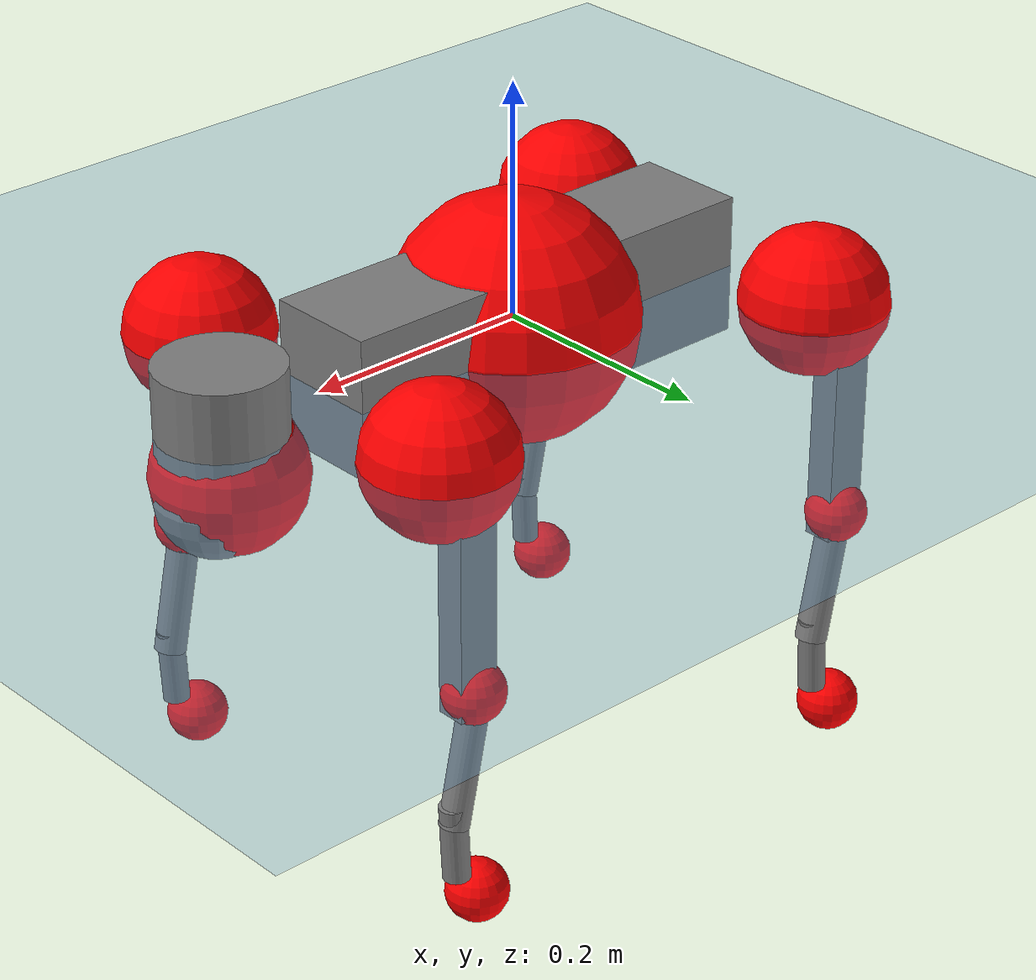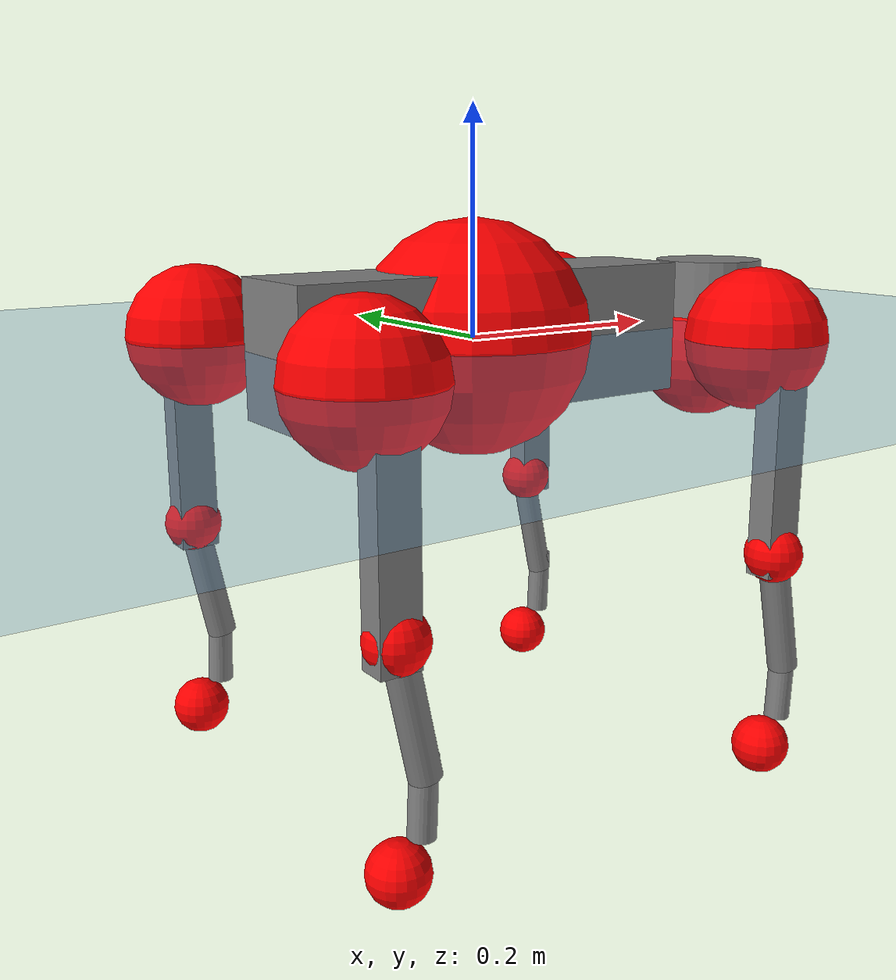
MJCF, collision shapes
<mujoco model="go2">
  <compiler angle="radian" assetdir="assets" balanceinertia="true" inertiafromgeom="false"/>

  <option timestep="0.005" density="1.2" viscosity="2e-05"/>

  <size nkey="1"/>

  <visual>
    <quality shadowsize="8192"/>
    <map shadowclip="0.5"/>
  </visual>

  <default>
    <default class="/">
      <geom contype="0" conaffinity="0" group="1" solref="-1000 -80"/>
      <site size="0.01 0.005 0.005" group="5"/>
      <general forcelimited="true" biastype="affine" gainprm="20" biasprm="0 -20 -0.5"/>
      <default class="go2">
        <joint armature="0.01" damping="0.01" frictionloss="0.2"/>
        <geom condim="1" margin="0.001"/>
        <default class="visual">
          <geom type="mesh" group="2"/>
        </default>
        <default class="collision">
          <geom group="3"/>
          <default class="foot">
            <geom size="0.022 0 0" condim="6" priority="1" friction="0.8 0.02 0.01" solimp="0.015 1 0.022"/>
          </default>
        </default>
        <default class="reward_collision_sphere">
          <geom group="5" rgba="1 0 0 1"/>
        </default>
      </default>
    </default>
  </default>

  <asset>
    <texture type="skybox" colorspace="auto" name="//unnamed_texture_0" builtin="gradient" rgb1="0.95 0.95 0.95" rgb2="0.95 0.95 0.95" width="100" height="600"/>
    <texture type="2d" colorspace="auto" name="texplane" builtin="checker" rgb1="0.345 0.575 0.748" rgb2="0.345 0.575 0.748" markrgb="1 1 1" width="512" height="512"/>
    <material name="MatPlane" class="/" texture="texplane" texuniform="true" texrepeat="2 2" specular="0.9"/>
    <material name="metal" class="/" rgba="0.9 0.95 0.95 1"/>
    <material name="black" class="/" rgba="0 0 0 1"/>
    <material name="white" class="/"/>
    <material name="gray" class="/" rgba="0.671705 0.692426 0.77427 1"/>
    <mesh name="base_0" class="/" file="base_0.obj"/>
    <mesh name="base_1" class="/" file="base_1.obj"/>
    <mesh name="base_2" class="/" file="base_2.obj"/>
    <mesh name="base_3" class="/" file="base_3.obj"/>
    <mesh name="base_4" class="/" file="base_4.obj"/>
    <mesh name="hip_0" class="/" file="hip_0.obj"/>
    <mesh name="hip_1" class="/" file="hip_1.obj"/>
    <mesh name="thigh_0" class="/" file="thigh_0.obj"/>
    <mesh name="thigh_1" class="/" file="thigh_1.obj"/>
    <mesh name="thigh_mirror_0" class="/" file="thigh_mirror_0.obj"/>
    <mesh name="thigh_mirror_1" class="/" file="thigh_mirror_1.obj"/>
    <mesh name="calf_0" class="/" file="calf_0.obj"/>
    <mesh name="calf_1" class="/" file="calf_1.obj"/>
    <mesh name="calf_mirror_0" class="/" file="calf_mirror_0.obj"/>
    <mesh name="calf_mirror_1" class="/" file="calf_mirror_1.obj"/>
    <mesh name="foot" class="/" file="foot.obj"/>
  </asset>

  <worldbody>
    <geom name="floor" class="/" size="100 100 0.125" type="plane" group="0" material="MatPlane"/>
    <light name="toplight_shadow" class="/" pos="0 0 5" dir="0.0990148 0.0990148 -0.990148" type="directional" ambient="0.04 0.04 0.04" diffuse="0.55 0.55 0.55" specular="0.12 0.12 0.12"/>
    <light name="toplight_fill" class="/" pos="0 0 5" dir="0.0990148 0.0990148 -0.990148" type="directional" castshadow="false" ambient="0.04 0.04 0.04" diffuse="0.3 0.3 0.3" specular="0.08 0.08 0.08"/>
    <body name="trunk" childclass="go2" pos="0.000468863 6.55231e-05 0.000632384" quat="1 -9.98364e-06 1.66926e-06 8.27748e-06">
      <inertial pos="0.0240162 0.000482389 -0.00488086" quat="-0.0186684 0.718625 -0.00379665 0.695137" mass="7.98438" diaginertia="0.118488 0.282958 0.0123927"/>
      <joint name="//unnamed_joint_0" type="free" armature="0" damping="0" frictionloss="0"/>
      <geom name="//unnamed_geom_1" class="visual" material="black" mesh="base_0"/>
      <geom name="//unnamed_geom_2" class="visual" material="black" mesh="base_1"/>
      <geom name="//unnamed_geom_3" class="visual" material="black" mesh="base_2"/>
      <geom name="//unnamed_geom_4" class="visual" material="white" mesh="base_3"/>
      <geom name="//unnamed_geom_5" class="visual" material="gray" mesh="base_4"/>
      <geom name="trunk_1" class="collision" size="0.196847 0.0489241 0.0596507" type="box"/>
      <geom name="trunk_2" class="collision" size="0.0523252 0.0470927" pos="0.292218 0 0.00872534" type="cylinder"/>
      <geom name="trunk_3" class="collision" size="0.0491857" pos="0.300421 0 -0.052352"/>
      <geom name="//unnamed_geom_9" class="reward_collision_sphere" size="0.10465"/>
      <geom name="//unnamed_geom_10" class="reward_collision_sphere" size="0.0627903" pos="0.287092 0 -0.039264"/>
      <site name="imu" pos="-0.025306 0.00854871 0.0371929" size="0.010465"/>
      <camera name="track" pos="0 -2.4833 0" quat="0.707107 0.707107 0 0" mode="trackcom"/>
      <camera name="ego_camera" pos="0.319902 0 0.039264" quat="-0.5 -0.5 0.5 0.5"/>
      <body name="FL_hip" pos="0.199105 0.054045 -0.00208672" quat="1 0.000146397 -4.32828e-05 -0.000275797">
        <inertial pos="-0.00702432 0.00256552 0.00156844" quat="0.494099 0.499034 0.50499 0.501813" mass="0.784383" diaginertia="0.00100322 0.00180206 0.00023955"/>
        <joint name="FL_hip_joint" pos="0 0 0" axis="1 0.000513368 0.000281865" range="-1.12572 1.08779" armature="0.0105011" damping="0.0113382" frictionloss="0.219121"/>
        <geom name="//unnamed_geom_11" class="visual" material="metal" mesh="hip_0"/>
        <geom name="//unnamed_geom_12" class="visual" material="gray" mesh="hip_1"/>
        <geom name="//unnamed_geom_13" class="collision" size="0.0481392 0.0209301" pos="0 0.0993322 0" quat="0.707107 0.707107 0 0" type="cylinder"/>
        <geom name="//unnamed_geom_14" class="reward_collision_sphere" size="0.0627903" pos="0 0.0869156 0"/>
        <body name="FL_thigh" pos="-0.00138282 0.115009 -0.00148243" quat="1 -0.000331664 -7.85752e-05 0.000183959">
          <inertial pos="-0.00319014 -0.0261997 -0.0266125" quat="0.830668 0.0866661 -0.024992 0.549414" mass="1.32213" diaginertia="0.00678781 0.0172786 0.000428474"/>
          <joint name="FL_thigh_joint" pos="0 0 0" axis="0.000372392 1 -0.000170943" stiffness="0.00124231" range="-1.52641 3.44604" armature="0.0101792" damping="0.018427" frictionloss="0.236474"/>
          <geom name="//unnamed_geom_15" class="visual" material="metal" mesh="thigh_0"/>
          <geom name="//unnamed_geom_16" class="visual" material="gray" mesh="thigh_1"/>
          <geom name="//unnamed_geom_17" class="collision" size="0.111453 0.0128197 0.0177906" pos="0 0 -0.0929249" quat="0.707107 0 0.707107 0" type="box"/>
          <body name="FL_calf" pos="-0.00376633 0.00211968 -0.18826" quat="1 0.000175691 0.000976807 5.5212e-05">
            <inertial pos="0.00752225 -0.000933452 -0.119971" quat="0.712006 0.00178297 -0.00521245 0.702152" mass="0.27035" diaginertia="0.00167475 0.00415478 2.76115e-05"/>
            <joint name="FL_calf_joint" pos="0 0 0" axis="0.00505532 0.999986 -0.0017865" range="-2.66236 -0.855456" armature="0.00984085" damping="0.0102073" frictionloss="0.205749"/>
            <geom name="//unnamed_geom_18" class="visual" material="gray" mesh="calf_0"/>
            <geom name="//unnamed_geom_19" class="visual" material="black" mesh="calf_1"/>
            <geom name="FL_calf0" class="collision" size="0.0125581 0.0627903" pos="0.00820262 0 -0.052352" quat="0.994493 0 -0.104807 0" type="cylinder"/>
            <geom name="//unnamed_geom_21" class="collision" size="0.0115115 0.0340114" pos="0.0205065 0 -0.129135" quat="0.999688 0 0.0249974 0" type="cylinder"/>
            <geom name="//unnamed_geom_22" class="visual" pos="0 0 -0.18585" quat="1 0 0 0" material="black" mesh="foot"/>
            <geom name="FL_foot" class="foot" size="0.0184666" pos="-0.00205065 0 -0.18585"/>
            <geom name="//unnamed_geom_24" class="reward_collision_sphere" size="0.0261626"/>
            <geom name="//unnamed_geom_25" class="reward_collision_sphere" size="0.0261626" pos="-0.00205065 0 -0.18585"/>
            <site name="FL_foot" class="foot" pos="-0.00205065 0 -0.18585" size="0.010465"/>
          </body>
        </body>
      </body>
      <body name="FR_hip" pos="0.201454 -0.0596904 -0.0012014" quat="1 -9.19129e-05 -1.77187e-05 0.000669326">
        <inertial pos="-0.00784602 -0.000420161 0.00221557" quat="0.498277 0.505507 0.499155 0.497018" mass="0.794531" diaginertia="0.000975007 0.00185694 0.000243287"/>
        <joint name="FR_hip_joint" pos="0 0 0" axis="0.999986 0.00234454 0.00468606" range="-1.05089 1.05166" armature="0.0117928" damping="0.0168294" frictionloss="0.236995"/>
        <geom name="//unnamed_geom_26" class="visual" pos="0 3.21561e-09 1.37924e-07" quat="4.63268e-05 1 0 0" material="metal" mesh="hip_0"/>
        <geom name="//unnamed_geom_27" class="visual" pos="0 5.21288e-09 -3.41139e-07" quat="4.63268e-05 1 0 0" material="gray" mesh="hip_1"/>
        <geom name="//unnamed_geom_28" class="collision" size="0.0481392 0.0209301" pos="0 -0.0993322 0" quat="0.707107 0.707107 0 0" type="cylinder"/>
        <geom name="//unnamed_geom_29" class="reward_collision_sphere" size="0.0627903" pos="0 -0.0869156 0"/>
        <body name="FR_thigh" pos="-0.00244563 -0.122193 -0.00355038" quat="0.999999 0.000523239 0.000345218 0.000945374">
          <inertial pos="-0.00615459 0.0310501 -0.0285012" quat="0.547195 -0.0179566 0.0896591 0.831996" mass="1.31839" diaginertia="0.00671905 0.017121 0.000426414"/>
          <joint name="FR_thigh_joint" pos="0 0 0" axis="0.00510508 -0.999987 -0.000241784" range="-3.44134 1.56698" armature="0.010924" damping="0.0248271" frictionloss="0.209116"/>
          <geom name="//unnamed_geom_30" class="visual" material="metal" mesh="thigh_mirror_0"/>
          <geom name="//unnamed_geom_31" class="visual" material="gray" mesh="thigh_mirror_1"/>
          <geom name="//unnamed_geom_32" class="collision" size="0.111453 0.0128197 0.0177906" pos="0 0 -0.0929249" quat="0.707107 0 0.707107 0" type="box"/>
          <body name="FR_calf" pos="0.00205307 -0.000102953 -0.186678" quat="1 -0.000228418 -0.000283638 -0.000446173">
            <inertial pos="0.00907831 0.00100282 -0.122685" quat="0.703459 -0.00127746 0.0076256 0.710694" mass="0.277721" diaginertia="0.00173272 0.0043066 2.76744e-05"/>
            <joint name="FR_calf_joint" pos="0 0 0" axis="-0.0021391 -0.99988 -0.01532" range="0.872314 2.70841" armature="0.00938424" damping="0" frictionloss="0.219846"/>
            <geom name="//unnamed_geom_33" class="visual" material="gray" mesh="calf_mirror_0"/>
            <geom name="//unnamed_geom_34" class="visual" material="black" mesh="calf_mirror_1"/>
            <geom name="FR_calf0" class="collision" size="0.0136046 0.0627903" pos="0.0102533 0 -0.052352" quat="0.995004 0 -0.0998334 0" type="cylinder"/>
            <geom name="//unnamed_geom_36" class="collision" size="0.0115115 0.0340114" pos="0.0205065 0 -0.129135" quat="0.999688 0 0.0249974 0" type="cylinder"/>
            <geom name="//unnamed_geom_37" class="visual" pos="0 0 -0.18585" quat="1 0 0 0" material="black" mesh="foot"/>
            <geom name="FR_foot" class="foot" size="0.0207043" pos="-0.00205065 0 -0.18585"/>
            <geom name="//unnamed_geom_39" class="reward_collision_sphere" size="0.0261626"/>
            <geom name="//unnamed_geom_40" class="reward_collision_sphere" size="0.0261626" pos="-0.00205065 0 -0.18585"/>
            <site name="FR_foot" class="foot" pos="-0.00205065 0 -0.18585" size="0.010465"/>
          </body>
        </body>
      </body>
      <body name="RL_hip" pos="-0.197626 0.0562311 0.00164047" quat="0.999999 -0.00056692 0.000758456 -0.000611095">
        <inertial pos="0.00528153 0.00306197 0.00160943" quat="0.516358 0.492898 0.492302 0.498061" mass="0.827199" diaginertia="0.00103234 0.00180923 0.000252297"/>
        <joint name="RL_hip_joint" pos="0 0 0" axis="-0.999905 0.0135094 -0.00284629" range="-0.999742 0.996488" armature="0.0106389" damping="0.0061128" frictionloss="0.231825"/>
        <geom name="//unnamed_geom_41" class="visual" pos="-1.33107e-09 0 -2.6092e-07" quat="4.63268e-05 0 1 0" material="metal" mesh="hip_0"/>
        <geom name="//unnamed_geom_42" class="visual" pos="-2.15782e-09 0 -2.31399e-07" quat="4.63268e-05 0 1 0" material="gray" mesh="hip_1"/>
        <geom name="//unnamed_geom_43" class="collision" size="0.0481392 0.0209301" pos="0 0.0993322 0" quat="0.707107 0.707107 0 0" type="cylinder"/>
        <geom name="//unnamed_geom_44" class="reward_collision_sphere" size="0.0627903" pos="0 0.0869156 0"/>
        <body name="RL_thigh" pos="-0.000940909 0.118379 0.00283298" quat="0.999999 -0.000408669 0.000286091 -0.00106418">
          <inertial pos="-0.0036977 -0.028248 -0.026191" quat="0.831332 0.0794596 -0.0255162 0.549475" mass="1.29971" diaginertia="0.00673963 0.0183471 0.000455128"/>
          <joint name="RL_thigh_joint" pos="0 0 0" axis="0.0103817 0.999795 0.0174116" range="-0.523139 4.5663" armature="0.0092447" damping="0.0100843" frictionloss="0.202578"/>
          <geom name="//unnamed_geom_45" class="visual" material="metal" mesh="thigh_0"/>
          <geom name="//unnamed_geom_46" class="visual" material="gray" mesh="thigh_1"/>
          <geom name="//unnamed_geom_47" class="collision" size="0.111453 0.0128197 0.0177906" pos="0 0 -0.0929249" quat="0.707107 0 0.707107 0" type="box"/>
          <body name="RL_calf" pos="5.34222e-05 0.00348916 -0.184367" quat="0.999999 -0.000119251 0.000760012 -0.000798655">
            <inertial pos="0.00581254 -0.00135703 -0.124841" quat="0.710125 0.00150923 -0.0046898 0.704058" mass="0.286597" diaginertia="0.0016932 0.00440552 2.75033e-05"/>
            <joint name="RL_calf_joint" pos="0 0 0" axis="0.00131601 0.999999 -0.00105367" range="-2.78681 -0.838873" armature="0.010004" damping="0" frictionloss="0.218827"/>
            <geom name="//unnamed_geom_48" class="visual" material="gray" mesh="calf_0"/>
            <geom name="//unnamed_geom_49" class="visual" material="black" mesh="calf_1"/>
            <geom name="RL_calf0" class="collision" size="0.0136046 0.0627903" pos="0.0102533 0 -0.052352" quat="0.995004 0 -0.0998334 0" type="cylinder"/>
            <geom name="//unnamed_geom_51" class="collision" size="0.0115115 0.0340114" pos="0.0205065 0 -0.129135" quat="0.999688 0 0.0249974 0" type="cylinder"/>
            <geom name="//unnamed_geom_52" class="visual" pos="0 0 -0.18585" quat="1 0 0 0" material="black" mesh="foot"/>
            <geom name="RL_foot" class="foot" size="0.0231198" pos="-0.00205065 0 -0.18585"/>
            <geom name="//unnamed_geom_54" class="reward_collision_sphere" size="0.0261626"/>
            <geom name="//unnamed_geom_55" class="reward_collision_sphere" size="0.0261626" pos="-0.00205065 0 -0.18585"/>
            <site name="RL_foot" class="foot" pos="-0.00205065 0 -0.18585" size="0.010465"/>
          </body>
        </body>
      </body>
      <body name="RR_hip" pos="-0.196465 -0.0583085 0.000275351" quat="1 -0.000302 -0.000405125 0.000269383">
        <inertial pos="0.00778727 -0.00326319 -0.00126074" quat="0.497912 0.487864 0.506065 0.507908" mass="0.789847" diaginertia="0.00102467 0.00185388 0.000241417"/>
        <joint name="RR_hip_joint" pos="0 0 0" axis="-0.999956 0.00324432 0.00880089" stiffness="0.0101592" range="-1.07263 1.08612" armature="0.0104227" damping="0.00573082" frictionloss="0.218938"/>
        <geom name="//unnamed_geom_56" class="visual" pos="1.33856e-09 3.21561e-09 -3.98844e-07" quat="2.14617e-09 4.63268e-05 4.63268e-05 -1" material="metal" mesh="hip_0"/>
        <geom name="//unnamed_geom_57" class="visual" pos="2.1393e-09 5.21288e-09 1.09739e-07" quat="2.14617e-09 4.63268e-05 4.63268e-05 -1" material="gray" mesh="hip_1"/>
        <geom name="//unnamed_geom_58" class="collision" size="0.0481392 0.0209301" pos="0 -0.0993322 0" quat="0.707107 0.707107 0 0" type="cylinder"/>
        <geom name="//unnamed_geom_59" class="reward_collision_sphere" size="0.0627903" pos="0 -0.0869156 0"/>
        <body name="RR_thigh" pos="-0.000409569 -0.118307 0.000325422" quat="1 0.000147821 0.000202919 -0.000590068">
          <inertial pos="-0.00400792 0.0295073 -0.0271267" quat="0.55736 -0.0292136 0.0844809 0.825445" mass="1.29102" diaginertia="0.0066598 0.0167822 0.000436899"/>
          <joint name="RR_thigh_joint" pos="0 0 0" axis="-0.00768655 -0.999852 -0.0154078" range="-4.5048 0.559696" armature="0.0105824" damping="0.0110286" frictionloss="0.230025"/>
          <geom name="//unnamed_geom_60" class="visual" material="metal" mesh="thigh_mirror_0"/>
          <geom name="//unnamed_geom_61" class="visual" material="gray" mesh="thigh_mirror_1"/>
          <geom name="//unnamed_geom_62" class="collision" size="0.111453 0.0128197 0.0177906" pos="0 0 -0.0929249" quat="0.707107 0 0.707107 0" type="box"/>
          <body name="RR_calf" pos="0.00471924 0.00211555 -0.183882" quat="0.999999 -0.000248226 -0.000976992 0.00036332">
            <inertial pos="0.00241703 0.000569499 -0.126016" quat="0.708426 0.00606455 0.00390533 0.705749" mass="0.273199" diaginertia="0.00163011 0.00413094 2.73051e-05"/>
            <joint name="RR_calf_joint" pos="0 0 0" axis="-0.0162 -0.999863 0.00344881" range="0.848115 2.68093" armature="0.0114376" damping="0.00532587" frictionloss="0.200356"/>
            <geom name="//unnamed_geom_63" class="visual" material="gray" mesh="calf_mirror_0"/>
            <geom name="//unnamed_geom_64" class="visual" material="black" mesh="calf_mirror_1"/>
            <geom name="RR_calf0" class="collision" size="0.0136046 0.0627903" pos="0.0102533 0 -0.052352" quat="0.995004 0 -0.0998334 0" type="cylinder"/>
            <geom name="//unnamed_geom_66" class="collision" size="0.0115115 0.0340114" pos="0.0205065 0 -0.129135" quat="0.999688 0 0.0249974 0" type="cylinder"/>
            <geom name="//unnamed_geom_67" class="visual" pos="0 0 -0.18585" quat="1 0 0 0" material="black" mesh="foot"/>
            <geom name="RR_foot" class="foot" size="0.0220177" pos="-0.00205065 0 -0.18585"/>
            <geom name="//unnamed_geom_69" class="reward_collision_sphere" size="0.0261626"/>
            <geom name="//unnamed_geom_70" class="reward_collision_sphere" size="0.0261626" pos="-0.00205065 0 -0.18585"/>
            <site name="RR_foot" class="foot" pos="-0.00205065 0 -0.18585" size="0.010465"/>
          </body>
        </body>
      </body>
    </body>
  </worldbody>

  <contact>
    <pair class="/" geom1="floor" geom2="FL_foot" name="//unnamed_contact_0"/>
    <pair class="/" geom1="floor" geom2="FR_foot" name="//unnamed_contact_1"/>
    <pair class="/" geom1="floor" geom2="RL_foot" name="//unnamed_contact_2"/>
    <pair class="/" geom1="floor" geom2="RR_foot" name="//unnamed_contact_3"/>
  </contact>

  <actuator>
    <general name="FL_hip" class="/" joint="FL_hip_joint" forcerange="-21.353 21.353" gainprm="19.779" biasprm="0 -19.779 -0.55941"/>
    <general name="FL_thigh" class="/" joint="FL_thigh_joint" forcerange="-23.8618 23.8618" gainprm="19.779" biasprm="0 -19.779 -0.55941"/>
    <general name="FL_calf" class="/" joint="FL_calf_joint" forcerange="-42.6907 42.6907" gainprm="19.779" biasprm="0 -19.779 -0.55941"/>
    <general name="FR_hip" class="/" joint="FR_hip_joint" forcerange="-22.6362 22.6362" gainprm="19.779" biasprm="0 -19.779 -0.55941"/>
    <general name="FR_thigh" class="/" joint="FR_thigh_joint" forcerange="-22.6012 22.6012" gainprm="19.779" biasprm="0 -19.779 -0.55941"/>
    <general name="FR_calf" class="/" joint="FR_calf_joint" forcerange="-48.9141 48.9141" gainprm="19.779" biasprm="0 -19.779 -0.55941"/>
    <general name="RL_hip" class="/" joint="RL_hip_joint" forcerange="-22.5338 22.5338" gainprm="19.779" biasprm="0 -19.779 -0.55941"/>
    <general name="RL_thigh" class="/" joint="RL_thigh_joint" forcerange="-26.338 26.338" gainprm="19.779" biasprm="0 -19.779 -0.55941"/>
    <general name="RL_calf" class="/" joint="RL_calf_joint" forcerange="-44.5372 44.5372" gainprm="19.779" biasprm="0 -19.779 -0.55941"/>
    <general name="RR_hip" class="/" joint="RR_hip_joint" forcerange="-27.5976 27.5976" gainprm="19.779" biasprm="0 -19.779 -0.55941"/>
    <general name="RR_thigh" class="/" joint="RR_thigh_joint" forcerange="-23.5221 23.5221" gainprm="19.779" biasprm="0 -19.779 -0.55941"/>
    <general name="RR_calf" class="/" joint="RR_calf_joint" forcerange="-46.5995 46.5995" gainprm="19.779" biasprm="0 -19.779 -0.55941"/>
  </actuator>

  <sensor>
    <gyro site="imu" name="imu_angular_velocity"/>
    <velocimeter site="imu" name="imu_linear_velocity"/>
    <framelinvel objtype="site" objname="FL_foot" name="FL_foot_global_linear_velocity"/>
    <framelinvel objtype="site" objname="FR_foot" name="FR_foot_global_linear_velocity"/>
    <framelinvel objtype="site" objname="RL_foot" name="RL_foot_global_linear_velocity"/>
    <framelinvel objtype="site" objname="RR_foot" name="RR_foot_global_linear_velocity"/>
  </sensor>

  <keyframe>
    <key name="home" qpos="0 0 0.325 1 0 0 0 0.1 0.8 -1.5 -0.1 -0.8 1.5 -0.1 0.8 -1.5 0.1 -0.8 1.5"/>
  </keyframe>
</mujoco>
